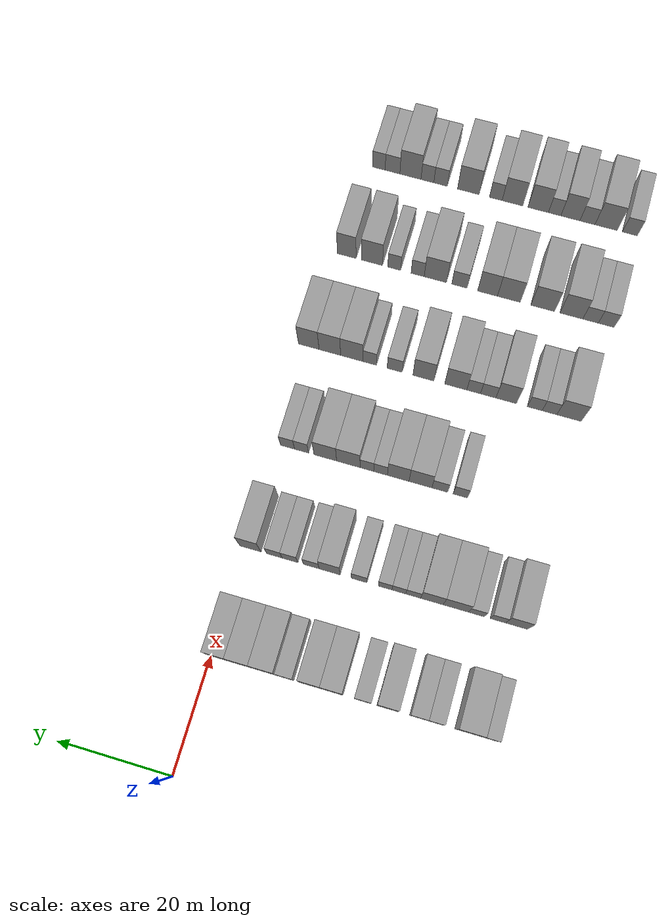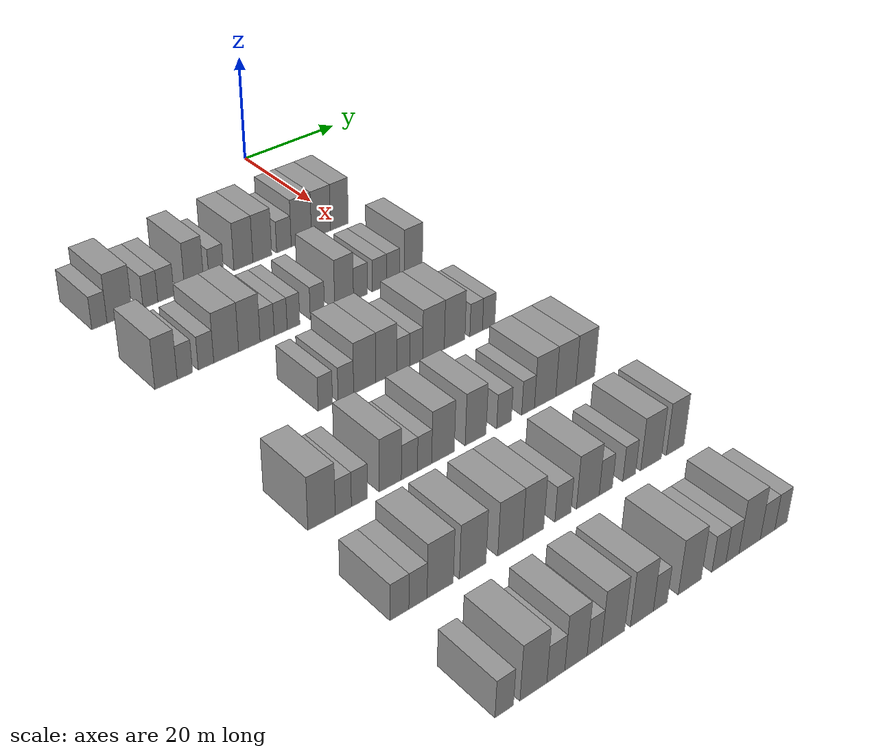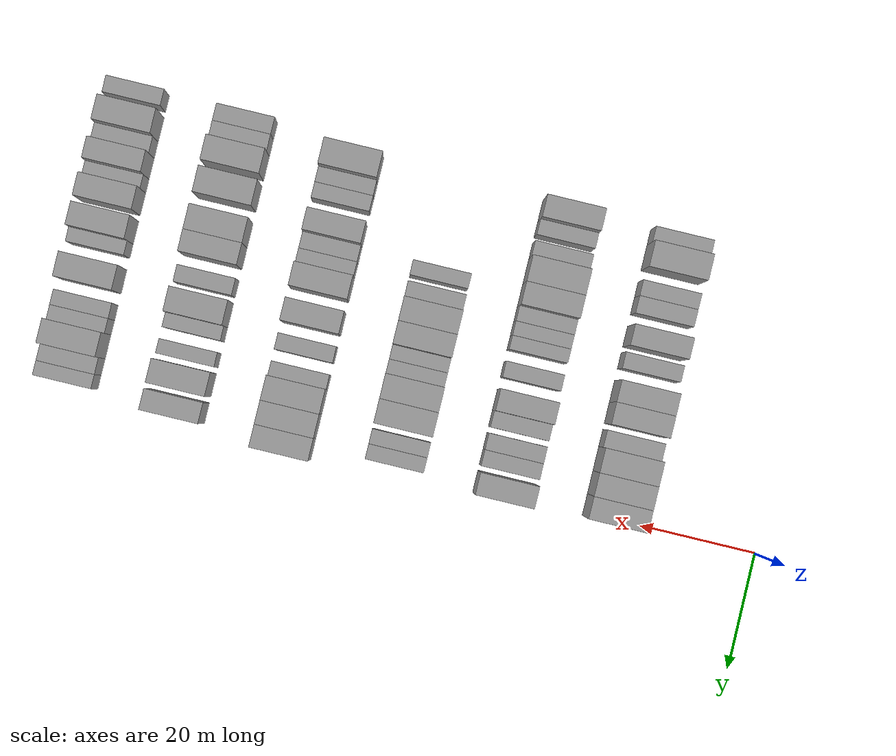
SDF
<sdf version="1.6">
 <world name="default">
  <model name="building_75">
   <static>1</static>
   <pose>25.0000 -47.9876 0 0.000000 0.000000 0.000000</pose>
   <link name="link">
    <pose>0 0 3.00 0 0 0</pose>
    <collision name="collision"><geometry><box><size>10.0000 2.6904 6.0000</size></box></geometry></collision>
    <visual name="visual">
     <cast_shadows>0</cast_shadows>
     <geometry><box><size>10.0000 2.6904 6.0000</size></box></geometry>
     <material>
      <script>
       <uri>model://grey_wall/materials/scripts</uri>
       <uri>model://grey_wall/materials/textures</uri>
       <name>vrc/grey_wall</name>
      </script>
     </material>
    </visual>
   </link>
  </model>
  <model name="building_76">
   <static>1</static>
   <pose>25.0000 -44.4058 0 0.000000 0.000000 0.000000</pose>
   <link name="link">
    <pose>0 0 4.50 0 0 0</pose>
    <collision name="collision"><geometry><box><size>10.0000 4.4731 9.0000</size></box></geometry></collision>
    <visual name="visual">
     <cast_shadows>0</cast_shadows>
     <geometry><box><size>10.0000 4.4731 9.0000</size></box></geometry>
     <material>
      <script>
       <uri>model://grey_wall/materials/scripts</uri>
       <uri>model://grey_wall/materials/textures</uri>
       <name>vrc/grey_wall</name>
      </script>
     </material>
    </visual>
   </link>
  </model>
  <model name="building_77">
   <static>1</static>
   <pose>25.0000 -38.8100 0 0.000000 0.000000 0.000000</pose>
   <link name="link">
    <pose>0 0 3.00 0 0 0</pose>
    <collision name="collision"><geometry><box><size>10.0000 2.7185 6.0000</size></box></geometry></collision>
    <visual name="visual">
     <cast_shadows>0</cast_shadows>
     <geometry><box><size>10.0000 2.7185 6.0000</size></box></geometry>
     <material>
      <script>
       <uri>model://grey_wall/materials/scripts</uri>
       <uri>model://grey_wall/materials/textures</uri>
       <name>vrc/grey_wall</name>
      </script>
     </material>
    </visual>
   </link>
  </model>
  <model name="building_78">
   <static>1</static>
   <pose>25.0000 -35.9516 0 0.000000 0.000000 0.000000</pose>
   <link name="link">
    <pose>0 0 3.00 0 0 0</pose>
    <collision name="collision"><geometry><box><size>10.0000 2.9984 6.0000</size></box></geometry></collision>
    <visual name="visual">
     <cast_shadows>0</cast_shadows>
     <geometry><box><size>10.0000 2.9984 6.0000</size></box></geometry>
     <material>
      <script>
       <uri>model://grey_wall/materials/scripts</uri>
       <uri>model://grey_wall/materials/textures</uri>
       <name>vrc/grey_wall</name>
      </script>
     </material>
    </visual>
   </link>
  </model>
  <model name="building_79">
   <static>1</static>
   <pose>25.0000 -30.6414 0 0.000000 0.000000 0.000000</pose>
   <link name="link">
    <pose>0 0 4.50 0 0 0</pose>
    <collision name="collision"><geometry><box><size>10.0000 3.6219 9.0000</size></box></geometry></collision>
    <visual name="visual">
     <cast_shadows>0</cast_shadows>
     <geometry><box><size>10.0000 3.6219 9.0000</size></box></geometry>
     <material>
      <script>
       <uri>model://grey_wall/materials/scripts</uri>
       <uri>model://grey_wall/materials/textures</uri>
       <name>vrc/grey_wall</name>
      </script>
     </material>
    </visual>
   </link>
  </model>
  <model name="building_80">
   <static>1</static>
   <pose>25.0000 -26.4123 0 0.000000 0.000000 0.000000</pose>
   <link name="link">
    <pose>0 0 3.00 0 0 0</pose>
    <collision name="collision"><geometry><box><size>10.0000 2.8364 6.0000</size></box></geometry></collision>
    <visual name="visual">
     <cast_shadows>0</cast_shadows>
     <geometry><box><size>10.0000 2.8364 6.0000</size></box></geometry>
     <material>
      <script>
       <uri>model://grey_wall/materials/scripts</uri>
       <uri>model://grey_wall/materials/textures</uri>
       <name>vrc/grey_wall</name>
      </script>
     </material>
    </visual>
   </link>
  </model>
  <model name="building_81">
   <static>1</static>
   <pose>25.0000 -21.1155 0 0.000000 0.000000 0.000000</pose>
   <link name="link">
    <pose>0 0 4.50 0 0 0</pose>
    <collision name="collision"><geometry><box><size>10.0000 3.7570 9.0000</size></box></geometry></collision>
    <visual name="visual">
     <cast_shadows>0</cast_shadows>
     <geometry><box><size>10.0000 3.7570 9.0000</size></box></geometry>
     <material>
      <script>
       <uri>model://grey_wall/materials/scripts</uri>
       <uri>model://grey_wall/materials/textures</uri>
       <name>vrc/grey_wall</name>
      </script>
     </material>
    </visual>
   </link>
  </model>
  <model name="building_82">
   <static>1</static>
   <pose>25.0000 -17.3538 0 0.000000 0.000000 0.000000</pose>
   <link name="link">
    <pose>0 0 4.50 0 0 0</pose>
    <collision name="collision"><geometry><box><size>10.0000 3.7665 9.0000</size></box></geometry></collision>
    <visual name="visual">
     <cast_shadows>0</cast_shadows>
     <geometry><box><size>10.0000 3.7665 9.0000</size></box></geometry>
     <material>
      <script>
       <uri>model://grey_wall/materials/scripts</uri>
       <uri>model://grey_wall/materials/textures</uri>
       <name>vrc/grey_wall</name>
      </script>
     </material>
    </visual>
   </link>
  </model>
  <model name="building_83">
   <static>1</static>
   <pose>25.0000 -12.9726 0 0.000000 0.000000 0.000000</pose>
   <link name="link">
    <pose>0 0 3.00 0 0 0</pose>
    <collision name="collision"><geometry><box><size>10.0000 2.9958 6.0000</size></box></geometry></collision>
    <visual name="visual">
     <cast_shadows>0</cast_shadows>
     <geometry><box><size>10.0000 2.9958 6.0000</size></box></geometry>
     <material>
      <script>
       <uri>model://grey_wall/materials/scripts</uri>
       <uri>model://grey_wall/materials/textures</uri>
       <name>vrc/grey_wall</name>
      </script>
     </material>
    </visual>
   </link>
  </model>
  <model name="building_84">
   <static>1</static>
   <pose>25.0000 -9.3769 0 0.000000 0.000000 0.000000</pose>
   <link name="link">
    <pose>0 0 4.50 0 0 0</pose>
    <collision name="collision"><geometry><box><size>10.0000 4.1956 9.0000</size></box></geometry></collision>
    <visual name="visual">
     <cast_shadows>0</cast_shadows>
     <geometry><box><size>10.0000 4.1956 9.0000</size></box></geometry>
     <material>
      <script>
       <uri>model://grey_wall/materials/scripts</uri>
       <uri>model://grey_wall/materials/textures</uri>
       <name>vrc/grey_wall</name>
      </script>
     </material>
    </visual>
   </link>
  </model>
  <model name="building_85">
   <static>1</static>
   <pose>25.0000 -5.2779 0 0.000000 0.000000 0.000000</pose>
   <link name="link">
    <pose>0 0 4.50 0 0 0</pose>
    <collision name="collision"><geometry><box><size>10.0000 4.0022 9.0000</size></box></geometry></collision>
    <visual name="visual">
     <cast_shadows>0</cast_shadows>
     <geometry><box><size>10.0000 4.0022 9.0000</size></box></geometry>
     <material>
      <script>
       <uri>model://grey_wall/materials/scripts</uri>
       <uri>model://grey_wall/materials/textures</uri>
       <name>vrc/grey_wall</name>
      </script>
     </material>
    </visual>
   </link>
  </model>
  <model name="building_86">
   <static>1</static>
   <pose>25.0000 -1.3721 0 0.000000 0.000000 0.000000</pose>
   <link name="link">
    <pose>0 0 4.50 0 0 0</pose>
    <collision name="collision"><geometry><box><size>10.0000 3.8095 9.0000</size></box></geometry></collision>
    <visual name="visual">
     <cast_shadows>0</cast_shadows>
     <geometry><box><size>10.0000 3.8095 9.0000</size></box></geometry>
     <material>
      <script>
       <uri>model://grey_wall/materials/scripts</uri>
       <uri>model://grey_wall/materials/textures</uri>
       <name>vrc/grey_wall</name>
      </script>
     </material>
    </visual>
   </link>
  </model>
  <model name="building_253">
   <static>1</static>
   <pose>44.0000 -47.9007 0 0.000000 0.000000 0.000000</pose>
   <link name="link">
    <pose>0 0 4.50 0 0 0</pose>
    <collision name="collision"><geometry><box><size>10.0000 3.8277 9.0000</size></box></geometry></collision>
    <visual name="visual">
     <cast_shadows>0</cast_shadows>
     <geometry><box><size>10.0000 3.8277 9.0000</size></box></geometry>
     <material>
      <script>
       <uri>model://grey_wall/materials/scripts</uri>
       <uri>model://grey_wall/materials/textures</uri>
       <name>vrc/grey_wall</name>
      </script>
     </material>
    </visual>
   </link>
  </model>
  <model name="building_254">
   <static>1</static>
   <pose>44.0000 -44.6475 0 0.000000 0.000000 0.000000</pose>
   <link name="link">
    <pose>0 0 3.00 0 0 0</pose>
    <collision name="collision"><geometry><box><size>10.0000 2.6787 6.0000</size></box></geometry></collision>
    <visual name="visual">
     <cast_shadows>0</cast_shadows>
     <geometry><box><size>10.0000 2.6787 6.0000</size></box></geometry>
     <material>
      <script>
       <uri>model://grey_wall/materials/scripts</uri>
       <uri>model://grey_wall/materials/textures</uri>
       <name>vrc/grey_wall</name>
      </script>
     </material>
    </visual>
   </link>
  </model>
  <model name="building_255">
   <static>1</static>
   <pose>44.0000 -40.9359 0 0.000000 0.000000 0.000000</pose>
   <link name="link">
    <pose>0 0 3.00 0 0 0</pose>
    <collision name="collision"><geometry><box><size>10.0000 2.7445 6.0000</size></box></geometry></collision>
    <visual name="visual">
     <cast_shadows>0</cast_shadows>
     <geometry><box><size>10.0000 2.7445 6.0000</size></box></geometry>
     <material>
      <script>
       <uri>model://grey_wall/materials/scripts</uri>
       <uri>model://grey_wall/materials/textures</uri>
       <name>vrc/grey_wall</name>
      </script>
     </material>
    </visual>
   </link>
  </model>
  <model name="building_256">
   <static>1</static>
   <pose>44.0000 -37.3210 0 0.000000 0.000000 0.000000</pose>
   <link name="link">
    <pose>0 0 4.50 0 0 0</pose>
    <collision name="collision"><geometry><box><size>10.0000 4.4855 9.0000</size></box></geometry></collision>
    <visual name="visual">
     <cast_shadows>0</cast_shadows>
     <geometry><box><size>10.0000 4.4855 9.0000</size></box></geometry>
     <material>
      <script>
       <uri>model://grey_wall/materials/scripts</uri>
       <uri>model://grey_wall/materials/textures</uri>
       <name>vrc/grey_wall</name>
      </script>
     </material>
    </visual>
   </link>
  </model>
  <model name="building_257">
   <static>1</static>
   <pose>44.0000 -33.1136 0 0.000000 0.000000 0.000000</pose>
   <link name="link">
    <pose>0 0 4.50 0 0 0</pose>
    <collision name="collision"><geometry><box><size>10.0000 3.9292 9.0000</size></box></geometry></collision>
    <visual name="visual">
     <cast_shadows>0</cast_shadows>
     <geometry><box><size>10.0000 3.9292 9.0000</size></box></geometry>
     <material>
      <script>
       <uri>model://grey_wall/materials/scripts</uri>
       <uri>model://grey_wall/materials/textures</uri>
       <name>vrc/grey_wall</name>
      </script>
     </material>
    </visual>
   </link>
  </model>
  <model name="building_258">
   <static>1</static>
   <pose>44.0000 -29.8338 0 0.000000 0.000000 0.000000</pose>
   <link name="link">
    <pose>0 0 3.00 0 0 0</pose>
    <collision name="collision"><geometry><box><size>10.0000 2.6304 6.0000</size></box></geometry></collision>
    <visual name="visual">
     <cast_shadows>0</cast_shadows>
     <geometry><box><size>10.0000 2.6304 6.0000</size></box></geometry>
     <material>
      <script>
       <uri>model://grey_wall/materials/scripts</uri>
       <uri>model://grey_wall/materials/textures</uri>
       <name>vrc/grey_wall</name>
      </script>
     </material>
    </visual>
   </link>
  </model>
  <model name="building_259">
   <static>1</static>
   <pose>44.0000 -27.2971 0 0.000000 0.000000 0.000000</pose>
   <link name="link">
    <pose>0 0 3.00 0 0 0</pose>
    <collision name="collision"><geometry><box><size>10.0000 2.4429 6.0000</size></box></geometry></collision>
    <visual name="visual">
     <cast_shadows>0</cast_shadows>
     <geometry><box><size>10.0000 2.4429 6.0000</size></box></geometry>
     <material>
      <script>
       <uri>model://grey_wall/materials/scripts</uri>
       <uri>model://grey_wall/materials/textures</uri>
       <name>vrc/grey_wall</name>
      </script>
     </material>
    </visual>
   </link>
  </model>
  <model name="building_260">
   <static>1</static>
   <pose>44.0000 -24.8692 0 0.000000 0.000000 0.000000</pose>
   <link name="link">
    <pose>0 0 3.00 0 0 0</pose>
    <collision name="collision"><geometry><box><size>10.0000 2.4128 6.0000</size></box></geometry></collision>
    <visual name="visual">
     <cast_shadows>0</cast_shadows>
     <geometry><box><size>10.0000 2.4128 6.0000</size></box></geometry>
     <material>
      <script>
       <uri>model://grey_wall/materials/scripts</uri>
       <uri>model://grey_wall/materials/textures</uri>
       <name>vrc/grey_wall</name>
      </script>
     </material>
    </visual>
   </link>
  </model>
  <model name="building_261">
   <static>1</static>
   <pose>44.0000 -20.2800 0 0.000000 0.000000 0.000000</pose>
   <link name="link">
    <pose>0 0 3.00 0 0 0</pose>
    <collision name="collision"><geometry><box><size>10.0000 2.7658 6.0000</size></box></geometry></collision>
    <visual name="visual">
     <cast_shadows>0</cast_shadows>
     <geometry><box><size>10.0000 2.7658 6.0000</size></box></geometry>
     <material>
      <script>
       <uri>model://grey_wall/materials/scripts</uri>
       <uri>model://grey_wall/materials/textures</uri>
       <name>vrc/grey_wall</name>
      </script>
     </material>
    </visual>
   </link>
  </model>
  <model name="building_262">
   <static>1</static>
   <pose>44.0000 -15.0343 0 0.000000 0.000000 0.000000</pose>
   <link name="link">
    <pose>0 0 4.50 0 0 0</pose>
    <collision name="collision"><geometry><box><size>10.0000 3.7255 9.0000</size></box></geometry></collision>
    <visual name="visual">
     <cast_shadows>0</cast_shadows>
     <geometry><box><size>10.0000 3.7255 9.0000</size></box></geometry>
     <material>
      <script>
       <uri>model://grey_wall/materials/scripts</uri>
       <uri>model://grey_wall/materials/textures</uri>
       <name>vrc/grey_wall</name>
      </script>
     </material>
    </visual>
   </link>
  </model>
  <model name="building_263">
   <static>1</static>
   <pose>44.0000 -11.7603 0 0.000000 0.000000 0.000000</pose>
   <link name="link">
    <pose>0 0 3.00 0 0 0</pose>
    <collision name="collision"><geometry><box><size>10.0000 2.8225 6.0000</size></box></geometry></collision>
    <visual name="visual">
     <cast_shadows>0</cast_shadows>
     <geometry><box><size>10.0000 2.8225 6.0000</size></box></geometry>
     <material>
      <script>
       <uri>model://grey_wall/materials/scripts</uri>
       <uri>model://grey_wall/materials/textures</uri>
       <name>vrc/grey_wall</name>
      </script>
     </material>
    </visual>
   </link>
  </model>
  <model name="building_264">
   <static>1</static>
   <pose>44.0000 -7.9225 0 0.000000 0.000000 0.000000</pose>
   <link name="link">
    <pose>0 0 3.00 0 0 0</pose>
    <collision name="collision"><geometry><box><size>10.0000 2.8533 6.0000</size></box></geometry></collision>
    <visual name="visual">
     <cast_shadows>0</cast_shadows>
     <geometry><box><size>10.0000 2.8533 6.0000</size></box></geometry>
     <material>
      <script>
       <uri>model://grey_wall/materials/scripts</uri>
       <uri>model://grey_wall/materials/textures</uri>
       <name>vrc/grey_wall</name>
      </script>
     </material>
    </visual>
   </link>
  </model>
  <model name="building_265">
   <static>1</static>
   <pose>44.0000 -5.1209 0 0.000000 0.000000 0.000000</pose>
   <link name="link">
    <pose>0 0 3.00 0 0 0</pose>
    <collision name="collision"><geometry><box><size>10.0000 2.7499 6.0000</size></box></geometry></collision>
    <visual name="visual">
     <cast_shadows>0</cast_shadows>
     <geometry><box><size>10.0000 2.7499 6.0000</size></box></geometry>
     <material>
      <script>
       <uri>model://grey_wall/materials/scripts</uri>
       <uri>model://grey_wall/materials/textures</uri>
       <name>vrc/grey_wall</name>
      </script>
     </material>
    </visual>
   </link>
  </model>
  <model name="building_266">
   <static>1</static>
   <pose>44.0000 -0.8465 0 0.000000 0.000000 0.000000</pose>
   <link name="link">
    <pose>0 0 4.50 0 0 0</pose>
    <collision name="collision"><geometry><box><size>10.0000 3.7989 9.0000</size></box></geometry></collision>
    <visual name="visual">
     <cast_shadows>0</cast_shadows>
     <geometry><box><size>10.0000 3.7989 9.0000</size></box></geometry>
     <material>
      <script>
       <uri>model://grey_wall/materials/scripts</uri>
       <uri>model://grey_wall/materials/textures</uri>
       <name>vrc/grey_wall</name>
      </script>
     </material>
    </visual>
   </link>
  </model>
  <model name="building_431">
   <static>1</static>
   <pose>63.0000 -33.1133 0 0.000000 0.000000 0.000000</pose>
   <link name="link">
    <pose>0 0 3.00 0 0 0</pose>
    <collision name="collision"><geometry><box><size>10.0000 2.5866 6.0000</size></box></geometry></collision>
    <visual name="visual">
     <cast_shadows>0</cast_shadows>
     <geometry><box><size>10.0000 2.5866 6.0000</size></box></geometry>
     <material>
      <script>
       <uri>model://grey_wall/materials/scripts</uri>
       <uri>model://grey_wall/materials/textures</uri>
       <name>vrc/grey_wall</name>
      </script>
     </material>
    </visual>
   </link>
  </model>
  <model name="building_432">
   <static>1</static>
   <pose>63.0000 -29.3968 0 0.000000 0.000000 0.000000</pose>
   <link name="link">
    <pose>0 0 3.00 0 0 0</pose>
    <collision name="collision"><geometry><box><size>10.0000 2.8464 6.0000</size></box></geometry></collision>
    <visual name="visual">
     <cast_shadows>0</cast_shadows>
     <geometry><box><size>10.0000 2.8464 6.0000</size></box></geometry>
     <material>
      <script>
       <uri>model://grey_wall/materials/scripts</uri>
       <uri>model://grey_wall/materials/textures</uri>
       <name>vrc/grey_wall</name>
      </script>
     </material>
    </visual>
   </link>
  </model>
  <model name="building_433">
   <static>1</static>
   <pose>63.0000 -25.9056 0 0.000000 0.000000 0.000000</pose>
   <link name="link">
    <pose>0 0 4.50 0 0 0</pose>
    <collision name="collision"><geometry><box><size>10.0000 4.1361 9.0000</size></box></geometry></collision>
    <visual name="visual">
     <cast_shadows>0</cast_shadows>
     <geometry><box><size>10.0000 4.1361 9.0000</size></box></geometry>
     <material>
      <script>
       <uri>model://grey_wall/materials/scripts</uri>
       <uri>model://grey_wall/materials/textures</uri>
       <name>vrc/grey_wall</name>
      </script>
     </material>
    </visual>
   </link>
  </model>
  <model name="building_434">
   <static>1</static>
   <pose>63.0000 -21.8682 0 0.000000 0.000000 0.000000</pose>
   <link name="link">
    <pose>0 0 4.50 0 0 0</pose>
    <collision name="collision"><geometry><box><size>10.0000 3.9386 9.0000</size></box></geometry></collision>
    <visual name="visual">
     <cast_shadows>0</cast_shadows>
     <geometry><box><size>10.0000 3.9386 9.0000</size></box></geometry>
     <material>
      <script>
       <uri>model://grey_wall/materials/scripts</uri>
       <uri>model://grey_wall/materials/textures</uri>
       <name>vrc/grey_wall</name>
      </script>
     </material>
    </visual>
   </link>
  </model>
  <model name="building_435">
   <static>1</static>
   <pose>63.0000 -18.6503 0 0.000000 0.000000 0.000000</pose>
   <link name="link">
    <pose>0 0 3.00 0 0 0</pose>
    <collision name="collision"><geometry><box><size>10.0000 2.4972 6.0000</size></box></geometry></collision>
    <visual name="visual">
     <cast_shadows>0</cast_shadows>
     <geometry><box><size>10.0000 2.4972 6.0000</size></box></geometry>
     <material>
      <script>
       <uri>model://grey_wall/materials/scripts</uri>
       <uri>model://grey_wall/materials/textures</uri>
       <name>vrc/grey_wall</name>
      </script>
     </material>
    </visual>
   </link>
  </model>
  <model name="building_436">
   <static>1</static>
   <pose>63.0000 -16.1538 0 0.000000 0.000000 0.000000</pose>
   <link name="link">
    <pose>0 0 3.00 0 0 0</pose>
    <collision name="collision"><geometry><box><size>10.0000 2.4959 6.0000</size></box></geometry></collision>
    <visual name="visual">
     <cast_shadows>0</cast_shadows>
     <geometry><box><size>10.0000 2.4959 6.0000</size></box></geometry>
     <material>
      <script>
       <uri>model://grey_wall/materials/scripts</uri>
       <uri>model://grey_wall/materials/textures</uri>
       <name>vrc/grey_wall</name>
      </script>
     </material>
    </visual>
   </link>
  </model>
  <model name="building_437">
   <static>1</static>
   <pose>63.0000 -12.7683 0 0.000000 0.000000 0.000000</pose>
   <link name="link">
    <pose>0 0 4.50 0 0 0</pose>
    <collision name="collision"><geometry><box><size>10.0000 4.2750 9.0000</size></box></geometry></collision>
    <visual name="visual">
     <cast_shadows>0</cast_shadows>
     <geometry><box><size>10.0000 4.2750 9.0000</size></box></geometry>
     <material>
      <script>
       <uri>model://grey_wall/materials/scripts</uri>
       <uri>model://grey_wall/materials/textures</uri>
       <name>vrc/grey_wall</name>
      </script>
     </material>
    </visual>
   </link>
  </model>
  <model name="building_438">
   <static>1</static>
   <pose>63.0000 -8.5569 0 0.000000 0.000000 0.000000</pose>
   <link name="link">
    <pose>0 0 4.50 0 0 0</pose>
    <collision name="collision"><geometry><box><size>10.0000 4.1477 9.0000</size></box></geometry></collision>
    <visual name="visual">
     <cast_shadows>0</cast_shadows>
     <geometry><box><size>10.0000 4.1477 9.0000</size></box></geometry>
     <material>
      <script>
       <uri>model://grey_wall/materials/scripts</uri>
       <uri>model://grey_wall/materials/textures</uri>
       <name>vrc/grey_wall</name>
      </script>
     </material>
    </visual>
   </link>
  </model>
  <model name="building_439">
   <static>1</static>
   <pose>63.0000 -4.1960 0 0.000000 0.000000 0.000000</pose>
   <link name="link">
    <pose>0 0 3.00 0 0 0</pose>
    <collision name="collision"><geometry><box><size>10.0000 2.5742 6.0000</size></box></geometry></collision>
    <visual name="visual">
     <cast_shadows>0</cast_shadows>
     <geometry><box><size>10.0000 2.5742 6.0000</size></box></geometry>
     <material>
      <script>
       <uri>model://grey_wall/materials/scripts</uri>
       <uri>model://grey_wall/materials/textures</uri>
       <name>vrc/grey_wall</name>
      </script>
     </material>
    </visual>
   </link>
  </model>
  <model name="building_440">
   <static>1</static>
   <pose>63.0000 -1.6105 0 0.000000 0.000000 0.000000</pose>
   <link name="link">
    <pose>0 0 3.00 0 0 0</pose>
    <collision name="collision"><geometry><box><size>10.0000 2.5967 6.0000</size></box></geometry></collision>
    <visual name="visual">
     <cast_shadows>0</cast_shadows>
     <geometry><box><size>10.0000 2.5967 6.0000</size></box></geometry>
     <material>
      <script>
       <uri>model://grey_wall/materials/scripts</uri>
       <uri>model://grey_wall/materials/textures</uri>
       <name>vrc/grey_wall</name>
      </script>
     </material>
    </visual>
   </link>
  </model>
  <model name="building_599">
   <static>1</static>
   <pose>82.0000 -48.0800 0 0.000000 0.000000 0.000000</pose>
   <link name="link">
    <pose>0 0 4.50 0 0 0</pose>
    <collision name="collision"><geometry><box><size>10.0000 4.4681 9.0000</size></box></geometry></collision>
    <visual name="visual">
     <cast_shadows>0</cast_shadows>
     <geometry><box><size>10.0000 4.4681 9.0000</size></box></geometry>
     <material>
      <script>
       <uri>model://grey_wall/materials/scripts</uri>
       <uri>model://grey_wall/materials/textures</uri>
       <name>vrc/grey_wall</name>
      </script>
     </material>
    </visual>
   </link>
  </model>
  <model name="building_600">
   <static>1</static>
   <pose>82.0000 -44.5097 0 0.000000 0.000000 0.000000</pose>
   <link name="link">
    <pose>0 0 3.00 0 0 0</pose>
    <collision name="collision"><geometry><box><size>10.0000 2.6726 6.0000</size></box></geometry></collision>
    <visual name="visual">
     <cast_shadows>0</cast_shadows>
     <geometry><box><size>10.0000 2.6726 6.0000</size></box></geometry>
     <material>
      <script>
       <uri>model://grey_wall/materials/scripts</uri>
       <uri>model://grey_wall/materials/textures</uri>
       <name>vrc/grey_wall</name>
      </script>
     </material>
    </visual>
   </link>
  </model>
  <model name="building_601">
   <static>1</static>
   <pose>82.0000 -41.8176 0 0.000000 0.000000 0.000000</pose>
   <link name="link">
    <pose>0 0 3.00 0 0 0</pose>
    <collision name="collision"><geometry><box><size>10.0000 2.7115 6.0000</size></box></geometry></collision>
    <visual name="visual">
     <cast_shadows>0</cast_shadows>
     <geometry><box><size>10.0000 2.7115 6.0000</size></box></geometry>
     <material>
      <script>
       <uri>model://grey_wall/materials/scripts</uri>
       <uri>model://grey_wall/materials/textures</uri>
       <name>vrc/grey_wall</name>
      </script>
     </material>
    </visual>
   </link>
  </model>
  <model name="building_602">
   <static>1</static>
   <pose>82.0000 -36.5616 0 0.000000 0.000000 0.000000</pose>
   <link name="link">
    <pose>0 0 4.50 0 0 0</pose>
    <collision name="collision"><geometry><box><size>10.0000 3.8004 9.0000</size></box></geometry></collision>
    <visual name="visual">
     <cast_shadows>0</cast_shadows>
     <geometry><box><size>10.0000 3.8004 9.0000</size></box></geometry>
     <material>
      <script>
       <uri>model://grey_wall/materials/scripts</uri>
       <uri>model://grey_wall/materials/textures</uri>
       <name>vrc/grey_wall</name>
      </script>
     </material>
    </visual>
   </link>
  </model>
  <model name="building_603">
   <static>1</static>
   <pose>82.0000 -33.2429 0 0.000000 0.000000 0.000000</pose>
   <link name="link">
    <pose>0 0 3.00 0 0 0</pose>
    <collision name="collision"><geometry><box><size>10.0000 2.8372 6.0000</size></box></geometry></collision>
    <visual name="visual">
     <cast_shadows>0</cast_shadows>
     <geometry><box><size>10.0000 2.8372 6.0000</size></box></geometry>
     <material>
      <script>
       <uri>model://grey_wall/materials/scripts</uri>
       <uri>model://grey_wall/materials/textures</uri>
       <name>vrc/grey_wall</name>
      </script>
     </material>
    </visual>
   </link>
  </model>
  <model name="building_604">
   <static>1</static>
   <pose>82.0000 -30.5596 0 0.000000 0.000000 0.000000</pose>
   <link name="link">
    <pose>0 0 3.00 0 0 0</pose>
    <collision name="collision"><geometry><box><size>10.0000 2.5294 6.0000</size></box></geometry></collision>
    <visual name="visual">
     <cast_shadows>0</cast_shadows>
     <geometry><box><size>10.0000 2.5294 6.0000</size></box></geometry>
     <material>
      <script>
       <uri>model://grey_wall/materials/scripts</uri>
       <uri>model://grey_wall/materials/textures</uri>
       <name>vrc/grey_wall</name>
      </script>
     </material>
    </visual>
   </link>
  </model>
  <model name="building_605">
   <static>1</static>
   <pose>82.0000 -27.2499 0 0.000000 0.000000 0.000000</pose>
   <link name="link">
    <pose>0 0 4.50 0 0 0</pose>
    <collision name="collision"><geometry><box><size>10.0000 4.0899 9.0000</size></box></geometry></collision>
    <visual name="visual">
     <cast_shadows>0</cast_shadows>
     <geometry><box><size>10.0000 4.0899 9.0000</size></box></geometry>
     <material>
      <script>
       <uri>model://grey_wall/materials/scripts</uri>
       <uri>model://grey_wall/materials/textures</uri>
       <name>vrc/grey_wall</name>
      </script>
     </material>
    </visual>
   </link>
  </model>
  <model name="building_606">
   <static>1</static>
   <pose>82.0000 -21.2546 0 0.000000 0.000000 0.000000</pose>
   <link name="link">
    <pose>0 0 4.50 0 0 0</pose>
    <collision name="collision"><geometry><box><size>10.0000 3.9008 9.0000</size></box></geometry></collision>
    <visual name="visual">
     <cast_shadows>0</cast_shadows>
     <geometry><box><size>10.0000 3.9008 9.0000</size></box></geometry>
     <material>
      <script>
       <uri>model://grey_wall/materials/scripts</uri>
       <uri>model://grey_wall/materials/textures</uri>
       <name>vrc/grey_wall</name>
      </script>
     </material>
    </visual>
   </link>
  </model>
  <model name="building_607">
   <static>1</static>
   <pose>82.0000 -15.8991 0 0.000000 0.000000 0.000000</pose>
   <link name="link">
    <pose>0 0 3.00 0 0 0</pose>
    <collision name="collision"><geometry><box><size>10.0000 2.8103 6.0000</size></box></geometry></collision>
    <visual name="visual">
     <cast_shadows>0</cast_shadows>
     <geometry><box><size>10.0000 2.8103 6.0000</size></box></geometry>
     <material>
      <script>
       <uri>model://grey_wall/materials/scripts</uri>
       <uri>model://grey_wall/materials/textures</uri>
       <name>vrc/grey_wall</name>
      </script>
     </material>
    </visual>
   </link>
  </model>
  <model name="building_608">
   <static>1</static>
   <pose>82.0000 -11.2443 0 0.000000 0.000000 0.000000</pose>
   <link name="link">
    <pose>0 0 3.00 0 0 0</pose>
    <collision name="collision"><geometry><box><size>10.0000 2.4992 6.0000</size></box></geometry></collision>
    <visual name="visual">
     <cast_shadows>0</cast_shadows>
     <geometry><box><size>10.0000 2.4992 6.0000</size></box></geometry>
     <material>
      <script>
       <uri>model://grey_wall/materials/scripts</uri>
       <uri>model://grey_wall/materials/textures</uri>
       <name>vrc/grey_wall</name>
      </script>
     </material>
    </visual>
   </link>
  </model>
  <model name="building_609">
   <static>1</static>
   <pose>82.0000 -7.8743 0 0.000000 0.000000 0.000000</pose>
   <link name="link">
    <pose>0 0 4.50 0 0 0</pose>
    <collision name="collision"><geometry><box><size>10.0000 4.2407 9.0000</size></box></geometry></collision>
    <visual name="visual">
     <cast_shadows>0</cast_shadows>
     <geometry><box><size>10.0000 4.2407 9.0000</size></box></geometry>
     <material>
      <script>
       <uri>model://grey_wall/materials/scripts</uri>
       <uri>model://grey_wall/materials/textures</uri>
       <name>vrc/grey_wall</name>
      </script>
     </material>
    </visual>
   </link>
  </model>
  <model name="building_610">
   <static>1</static>
   <pose>82.0000 -3.7192 0 0.000000 0.000000 0.000000</pose>
   <link name="link">
    <pose>0 0 4.50 0 0 0</pose>
    <collision name="collision"><geometry><box><size>10.0000 4.0696 9.0000</size></box></geometry></collision>
    <visual name="visual">
     <cast_shadows>0</cast_shadows>
     <geometry><box><size>10.0000 4.0696 9.0000</size></box></geometry>
     <material>
      <script>
       <uri>model://grey_wall/materials/scripts</uri>
       <uri>model://grey_wall/materials/textures</uri>
       <name>vrc/grey_wall</name>
      </script>
     </material>
    </visual>
   </link>
  </model>
  <model name="building_611">
   <static>1</static>
   <pose>82.0000 0.2580 0 0.000000 0.000000 0.000000</pose>
   <link name="link">
    <pose>0 0 4.50 0 0 0</pose>
    <collision name="collision"><geometry><box><size>10.0000 3.8847 9.0000</size></box></geometry></collision>
    <visual name="visual">
     <cast_shadows>0</cast_shadows>
     <geometry><box><size>10.0000 3.8847 9.0000</size></box></geometry>
     <material>
      <script>
       <uri>model://grey_wall/materials/scripts</uri>
       <uri>model://grey_wall/materials/textures</uri>
       <name>vrc/grey_wall</name>
      </script>
     </material>
    </visual>
   </link>
  </model>
  <model name="building_783">
   <static>1</static>
   <pose>101.0000 -50.5894 0 0.000000 0.000000 0.000000</pose>
   <link name="link">
    <pose>0 0 3.00 0 0 0</pose>
    <collision name="collision"><geometry><box><size>10.0000 2.9601 6.0000</size></box></geometry></collision>
    <visual name="visual">
     <cast_shadows>0</cast_shadows>
     <geometry><box><size>10.0000 2.9601 6.0000</size></box></geometry>
     <material>
      <script>
       <uri>model://grey_wall/materials/scripts</uri>
       <uri>model://grey_wall/materials/textures</uri>
       <name>vrc/grey_wall</name>
      </script>
     </material>
    </visual>
   </link>
  </model>
  <model name="building_784">
   <static>1</static>
   <pose>101.0000 -47.6601 0 0.000000 0.000000 0.000000</pose>
   <link name="link">
    <pose>0 0 3.00 0 0 0</pose>
    <collision name="collision"><geometry><box><size>10.0000 2.8985 6.0000</size></box></geometry></collision>
    <visual name="visual">
     <cast_shadows>0</cast_shadows>
     <geometry><box><size>10.0000 2.8985 6.0000</size></box></geometry>
     <material>
      <script>
       <uri>model://grey_wall/materials/scripts</uri>
       <uri>model://grey_wall/materials/textures</uri>
       <name>vrc/grey_wall</name>
      </script>
     </material>
    </visual>
   </link>
  </model>
  <model name="building_785">
   <static>1</static>
   <pose>101.0000 -44.0724 0 0.000000 0.000000 0.000000</pose>
   <link name="link">
    <pose>0 0 4.50 0 0 0</pose>
    <collision name="collision"><geometry><box><size>10.0000 4.2770 9.0000</size></box></geometry></collision>
    <visual name="visual">
     <cast_shadows>0</cast_shadows>
     <geometry><box><size>10.0000 4.2770 9.0000</size></box></geometry>
     <material>
      <script>
       <uri>model://grey_wall/materials/scripts</uri>
       <uri>model://grey_wall/materials/textures</uri>
       <name>vrc/grey_wall</name>
      </script>
     </material>
    </visual>
   </link>
  </model>
  <model name="building_786">
   <static>1</static>
   <pose>101.0000 -38.7015 0 0.000000 0.000000 0.000000</pose>
   <link name="link">
    <pose>0 0 4.50 0 0 0</pose>
    <collision name="collision"><geometry><box><size>10.0000 4.4648 9.0000</size></box></geometry></collision>
    <visual name="visual">
     <cast_shadows>0</cast_shadows>
     <geometry><box><size>10.0000 4.4648 9.0000</size></box></geometry>
     <material>
      <script>
       <uri>model://grey_wall/materials/scripts</uri>
       <uri>model://grey_wall/materials/textures</uri>
       <name>vrc/grey_wall</name>
      </script>
     </material>
    </visual>
   </link>
  </model>
  <model name="building_787">
   <static>1</static>
   <pose>101.0000 -32.3101 0 0.000000 0.000000 0.000000</pose>
   <link name="link">
    <pose>0 0 4.50 0 0 0</pose>
    <collision name="collision"><geometry><box><size>10.0000 4.3179 9.0000</size></box></geometry></collision>
    <visual name="visual">
     <cast_shadows>0</cast_shadows>
     <geometry><box><size>10.0000 4.3179 9.0000</size></box></geometry>
     <material>
      <script>
       <uri>model://grey_wall/materials/scripts</uri>
       <uri>model://grey_wall/materials/textures</uri>
       <name>vrc/grey_wall</name>
      </script>
     </material>
    </visual>
   </link>
  </model>
  <model name="building_788">
   <static>1</static>
   <pose>101.0000 -28.2789 0 0.000000 0.000000 0.000000</pose>
   <link name="link">
    <pose>0 0 4.50 0 0 0</pose>
    <collision name="collision"><geometry><box><size>10.0000 3.7445 9.0000</size></box></geometry></collision>
    <visual name="visual">
     <cast_shadows>0</cast_shadows>
     <geometry><box><size>10.0000 3.7445 9.0000</size></box></geometry>
     <material>
      <script>
       <uri>model://grey_wall/materials/scripts</uri>
       <uri>model://grey_wall/materials/textures</uri>
       <name>vrc/grey_wall</name>
      </script>
     </material>
    </visual>
   </link>
  </model>
  <model name="building_789">
   <static>1</static>
   <pose>101.0000 -22.9402 0 0.000000 0.000000 0.000000</pose>
   <link name="link">
    <pose>0 0 3.00 0 0 0</pose>
    <collision name="collision"><geometry><box><size>10.0000 2.9330 6.0000</size></box></geometry></collision>
    <visual name="visual">
     <cast_shadows>0</cast_shadows>
     <geometry><box><size>10.0000 2.9330 6.0000</size></box></geometry>
     <material>
      <script>
       <uri>model://grey_wall/materials/scripts</uri>
       <uri>model://grey_wall/materials/textures</uri>
       <name>vrc/grey_wall</name>
      </script>
     </material>
    </visual>
   </link>
  </model>
  <model name="building_790">
   <static>1</static>
   <pose>101.0000 -18.3477 0 0.000000 0.000000 0.000000</pose>
   <link name="link">
    <pose>0 0 4.50 0 0 0</pose>
    <collision name="collision"><geometry><box><size>10.0000 4.2520 9.0000</size></box></geometry></collision>
    <visual name="visual">
     <cast_shadows>0</cast_shadows>
     <geometry><box><size>10.0000 4.2520 9.0000</size></box></geometry>
     <material>
      <script>
       <uri>model://grey_wall/materials/scripts</uri>
       <uri>model://grey_wall/materials/textures</uri>
       <name>vrc/grey_wall</name>
      </script>
     </material>
    </visual>
   </link>
  </model>
  <model name="building_791">
   <static>1</static>
   <pose>101.0000 -14.9692 0 0.000000 0.000000 0.000000</pose>
   <link name="link">
    <pose>0 0 3.00 0 0 0</pose>
    <collision name="collision"><geometry><box><size>10.0000 2.5051 6.0000</size></box></geometry></collision>
    <visual name="visual">
     <cast_shadows>0</cast_shadows>
     <geometry><box><size>10.0000 2.5051 6.0000</size></box></geometry>
     <material>
      <script>
       <uri>model://grey_wall/materials/scripts</uri>
       <uri>model://grey_wall/materials/textures</uri>
       <name>vrc/grey_wall</name>
      </script>
     </material>
    </visual>
   </link>
  </model>
  <model name="building_792">
   <static>1</static>
   <pose>101.0000 -10.4750 0 0.000000 0.000000 0.000000</pose>
   <link name="link">
    <pose>0 0 3.00 0 0 0</pose>
    <collision name="collision"><geometry><box><size>10.0000 2.4832 6.0000</size></box></geometry></collision>
    <visual name="visual">
     <cast_shadows>0</cast_shadows>
     <geometry><box><size>10.0000 2.4832 6.0000</size></box></geometry>
     <material>
      <script>
       <uri>model://grey_wall/materials/scripts</uri>
       <uri>model://grey_wall/materials/textures</uri>
       <name>vrc/grey_wall</name>
      </script>
     </material>
    </visual>
   </link>
  </model>
  <model name="building_793">
   <static>1</static>
   <pose>101.0000 -6.1856 0 0.000000 0.000000 0.000000</pose>
   <link name="link">
    <pose>0 0 4.50 0 0 0</pose>
    <collision name="collision"><geometry><box><size>10.0000 4.0957 9.0000</size></box></geometry></collision>
    <visual name="visual">
     <cast_shadows>0</cast_shadows>
     <geometry><box><size>10.0000 4.0957 9.0000</size></box></geometry>
     <material>
      <script>
       <uri>model://grey_wall/materials/scripts</uri>
       <uri>model://grey_wall/materials/textures</uri>
       <name>vrc/grey_wall</name>
      </script>
     </material>
    </visual>
   </link>
  </model>
  <model name="building_794">
   <static>1</static>
   <pose>101.0000 -1.3371 0 0.000000 0.000000 0.000000</pose>
   <link name="link">
    <pose>0 0 4.50 0 0 0</pose>
    <collision name="collision"><geometry><box><size>10.0000 3.6012 9.0000</size></box></geometry></collision>
    <visual name="visual">
     <cast_shadows>0</cast_shadows>
     <geometry><box><size>10.0000 3.6012 9.0000</size></box></geometry>
     <material>
      <script>
       <uri>model://grey_wall/materials/scripts</uri>
       <uri>model://grey_wall/materials/textures</uri>
       <name>vrc/grey_wall</name>
      </script>
     </material>
    </visual>
   </link>
  </model>
  <model name="building_949">
   <static>1</static>
   <pose>120.0000 -50.8448 0 0.000000 0.000000 0.000000</pose>
   <link name="link">
    <pose>0 0 3.00 0 0 0</pose>
    <collision name="collision"><geometry><box><size>10.0000 2.8449 6.0000</size></box></geometry></collision>
    <visual name="visual">
     <cast_shadows>0</cast_shadows>
     <geometry><box><size>10.0000 2.8449 6.0000</size></box></geometry>
     <material>
      <script>
       <uri>model://grey_wall/materials/scripts</uri>
       <uri>model://grey_wall/materials/textures</uri>
       <name>vrc/grey_wall</name>
      </script>
     </material>
    </visual>
   </link>
  </model>
  <model name="building_950">
   <static>1</static>
   <pose>120.0000 -46.2976 0 0.000000 0.000000 0.000000</pose>
   <link name="link">
    <pose>0 0 4.50 0 0 0</pose>
    <collision name="collision"><geometry><box><size>10.0000 4.2497 9.0000</size></box></geometry></collision>
    <visual name="visual">
     <cast_shadows>0</cast_shadows>
     <geometry><box><size>10.0000 4.2497 9.0000</size></box></geometry>
     <material>
      <script>
       <uri>model://grey_wall/materials/scripts</uri>
       <uri>model://grey_wall/materials/textures</uri>
       <name>vrc/grey_wall</name>
      </script>
     </material>
    </visual>
   </link>
  </model>
  <model name="building_951">
   <static>1</static>
   <pose>120.0000 -42.7334 0 0.000000 0.000000 0.000000</pose>
   <link name="link">
    <pose>0 0 3.00 0 0 0</pose>
    <collision name="collision"><geometry><box><size>10.0000 2.8786 6.0000</size></box></geometry></collision>
    <visual name="visual">
     <cast_shadows>0</cast_shadows>
     <geometry><box><size>10.0000 2.8786 6.0000</size></box></geometry>
     <material>
      <script>
       <uri>model://grey_wall/materials/scripts</uri>
       <uri>model://grey_wall/materials/textures</uri>
       <name>vrc/grey_wall</name>
      </script>
     </material>
    </visual>
   </link>
  </model>
  <model name="building_952">
   <static>1</static>
   <pose>120.0000 -39.4591 0 0.000000 0.000000 0.000000</pose>
   <link name="link">
    <pose>0 0 4.50 0 0 0</pose>
    <collision name="collision"><geometry><box><size>10.0000 3.6700 9.0000</size></box></geometry></collision>
    <visual name="visual">
     <cast_shadows>0</cast_shadows>
     <geometry><box><size>10.0000 3.6700 9.0000</size></box></geometry>
     <material>
      <script>
       <uri>model://grey_wall/materials/scripts</uri>
       <uri>model://grey_wall/materials/textures</uri>
       <name>vrc/grey_wall</name>
      </script>
     </material>
    </visual>
   </link>
  </model>
  <model name="building_953">
   <static>1</static>
   <pose>120.0000 -36.4220 0 0.000000 0.000000 0.000000</pose>
   <link name="link">
    <pose>0 0 3.00 0 0 0</pose>
    <collision name="collision"><geometry><box><size>10.0000 2.4041 6.0000</size></box></geometry></collision>
    <visual name="visual">
     <cast_shadows>0</cast_shadows>
     <geometry><box><size>10.0000 2.4041 6.0000</size></box></geometry>
     <material>
      <script>
       <uri>model://grey_wall/materials/scripts</uri>
       <uri>model://grey_wall/materials/textures</uri>
       <name>vrc/grey_wall</name>
      </script>
     </material>
    </visual>
   </link>
  </model>
  <model name="building_954">
   <static>1</static>
   <pose>120.0000 -33.2448 0 0.000000 0.000000 0.000000</pose>
   <link name="link">
    <pose>0 0 4.50 0 0 0</pose>
    <collision name="collision"><geometry><box><size>10.0000 3.9503 9.0000</size></box></geometry></collision>
    <visual name="visual">
     <cast_shadows>0</cast_shadows>
     <geometry><box><size>10.0000 3.9503 9.0000</size></box></geometry>
     <material>
      <script>
       <uri>model://grey_wall/materials/scripts</uri>
       <uri>model://grey_wall/materials/textures</uri>
       <name>vrc/grey_wall</name>
      </script>
     </material>
    </visual>
   </link>
  </model>
  <model name="building_955">
   <static>1</static>
   <pose>120.0000 -28.2688 0 0.000000 0.000000 0.000000</pose>
   <link name="link">
    <pose>0 0 4.50 0 0 0</pose>
    <collision name="collision"><geometry><box><size>10.0000 4.0017 9.0000</size></box></geometry></collision>
    <visual name="visual">
     <cast_shadows>0</cast_shadows>
     <geometry><box><size>10.0000 4.0017 9.0000</size></box></geometry>
     <material>
      <script>
       <uri>model://grey_wall/materials/scripts</uri>
       <uri>model://grey_wall/materials/textures</uri>
       <name>vrc/grey_wall</name>
      </script>
     </material>
    </visual>
   </link>
  </model>
  <model name="building_956">
   <static>1</static>
   <pose>120.0000 -25.0251 0 0.000000 0.000000 0.000000</pose>
   <link name="link">
    <pose>0 0 3.00 0 0 0</pose>
    <collision name="collision"><geometry><box><size>10.0000 2.4857 6.0000</size></box></geometry></collision>
    <visual name="visual">
     <cast_shadows>0</cast_shadows>
     <geometry><box><size>10.0000 2.4857 6.0000</size></box></geometry>
     <material>
      <script>
       <uri>model://grey_wall/materials/scripts</uri>
       <uri>model://grey_wall/materials/textures</uri>
       <name>vrc/grey_wall</name>
      </script>
     </material>
    </visual>
   </link>
  </model>
  <model name="building_957">
   <static>1</static>
   <pose>120.0000 -19.6756 0 0.000000 0.000000 0.000000</pose>
   <link name="link">
    <pose>0 0 4.50 0 0 0</pose>
    <collision name="collision"><geometry><box><size>10.0000 4.2132 9.0000</size></box></geometry></collision>
    <visual name="visual">
     <cast_shadows>0</cast_shadows>
     <geometry><box><size>10.0000 4.2132 9.0000</size></box></geometry>
     <material>
      <script>
       <uri>model://grey_wall/materials/scripts</uri>
       <uri>model://grey_wall/materials/textures</uri>
       <name>vrc/grey_wall</name>
      </script>
     </material>
    </visual>
   </link>
  </model>
  <model name="building_958">
   <static>1</static>
   <pose>120.0000 -14.2486 0 0.000000 0.000000 0.000000</pose>
   <link name="link">
    <pose>0 0 3.00 0 0 0</pose>
    <collision name="collision"><geometry><box><size>10.0000 2.6409 6.0000</size></box></geometry></collision>
    <visual name="visual">
     <cast_shadows>0</cast_shadows>
     <geometry><box><size>10.0000 2.6409 6.0000</size></box></geometry>
     <material>
      <script>
       <uri>model://grey_wall/materials/scripts</uri>
       <uri>model://grey_wall/materials/textures</uri>
       <name>vrc/grey_wall</name>
      </script>
     </material>
    </visual>
   </link>
  </model>
  <model name="building_959">
   <static>1</static>
   <pose>120.0000 -11.6679 0 0.000000 0.000000 0.000000</pose>
   <link name="link">
    <pose>0 0 3.00 0 0 0</pose>
    <collision name="collision"><geometry><box><size>10.0000 2.5207 6.0000</size></box></geometry></collision>
    <visual name="visual">
     <cast_shadows>0</cast_shadows>
     <geometry><box><size>10.0000 2.5207 6.0000</size></box></geometry>
     <material>
      <script>
       <uri>model://grey_wall/materials/scripts</uri>
       <uri>model://grey_wall/materials/textures</uri>
       <name>vrc/grey_wall</name>
      </script>
     </material>
    </visual>
   </link>
  </model>
  <model name="building_960">
   <static>1</static>
   <pose>120.0000 -8.3268 0 0.000000 0.000000 0.000000</pose>
   <link name="link">
    <pose>0 0 4.50 0 0 0</pose>
    <collision name="collision"><geometry><box><size>10.0000 4.1615 9.0000</size></box></geometry></collision>
    <visual name="visual">
     <cast_shadows>0</cast_shadows>
     <geometry><box><size>10.0000 4.1615 9.0000</size></box></geometry>
     <material>
      <script>
       <uri>model://grey_wall/materials/scripts</uri>
       <uri>model://grey_wall/materials/textures</uri>
       <name>vrc/grey_wall</name>
      </script>
     </material>
    </visual>
   </link>
  </model>
  <model name="building_961">
   <static>1</static>
   <pose>120.0000 -4.8008 0 0.000000 0.000000 0.000000</pose>
   <link name="link">
    <pose>0 0 3.00 0 0 0</pose>
    <collision name="collision"><geometry><box><size>10.0000 2.8905 6.0000</size></box></geometry></collision>
    <visual name="visual">
     <cast_shadows>0</cast_shadows>
     <geometry><box><size>10.0000 2.8905 6.0000</size></box></geometry>
     <material>
      <script>
       <uri>model://grey_wall/materials/scripts</uri>
       <uri>model://grey_wall/materials/textures</uri>
       <name>vrc/grey_wall</name>
      </script>
     </material>
    </visual>
   </link>
  </model>
  <model name="building_962">
   <static>1</static>
   <pose>120.0000 -2.1224 0 0.000000 0.000000 0.000000</pose>
   <link name="link">
    <pose>0 0 3.00 0 0 0</pose>
    <collision name="collision"><geometry><box><size>10.0000 2.4662 6.0000</size></box></geometry></collision>
    <visual name="visual">
     <cast_shadows>0</cast_shadows>
     <geometry><box><size>10.0000 2.4662 6.0000</size></box></geometry>
     <material>
      <script>
       <uri>model://grey_wall/materials/scripts</uri>
       <uri>model://grey_wall/materials/textures</uri>
       <name>vrc/grey_wall</name>
      </script>
     </material>
    </visual>
   </link>
  </model>
 </world>
</sdf>
